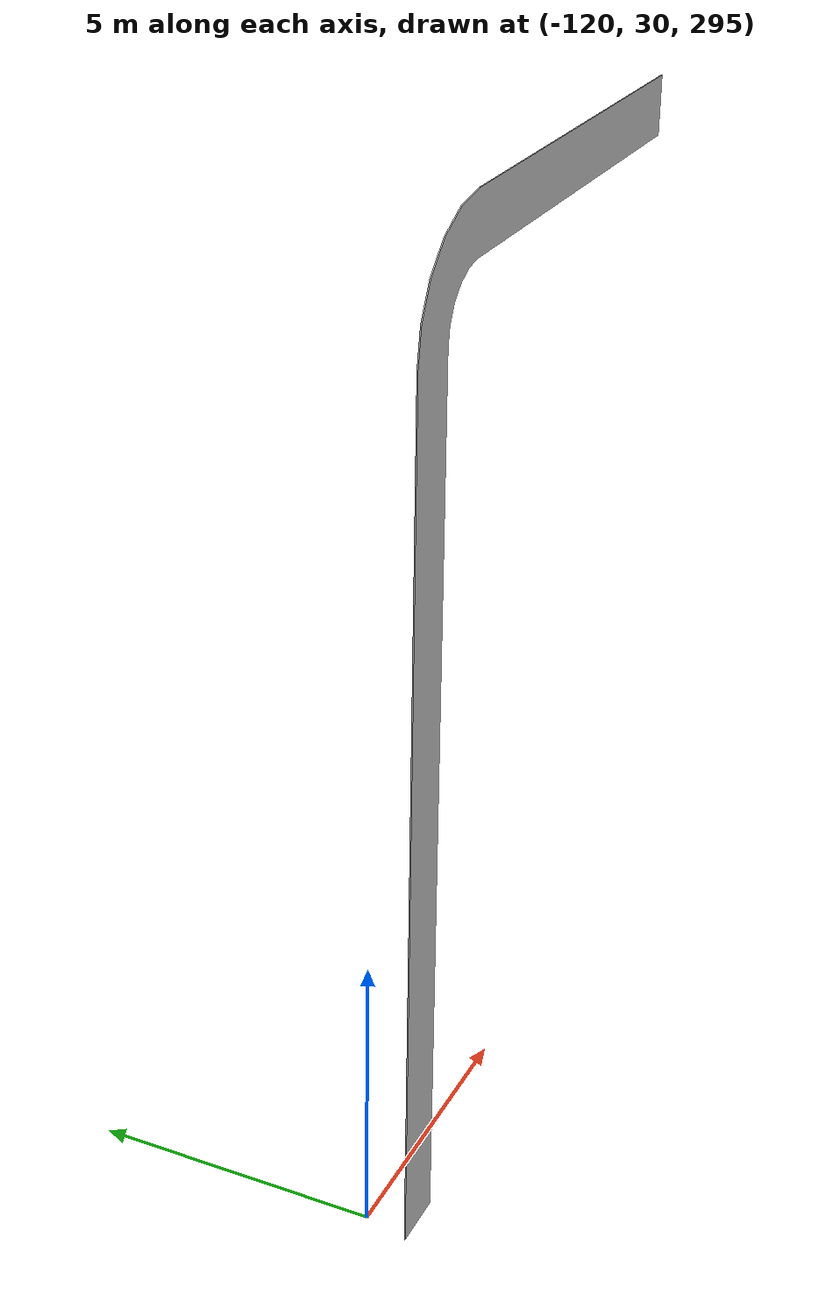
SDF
<?xml version='1.0'?>
<sdf version='1.7'>
    <model name='huldra-smaller-walkway'>
        <static>true</static>
        <link name='link0'>
            <visual name="visual0">
                <pose>0 0 0 0 0 0</pose>
                <geometry>
                    <mesh>
                        <uri>model://huldra-models/huldra-smaller-walkway/meshes/huldra-smaller-walkway.obj</uri>
                    </mesh>
                </geometry>
            </visual>
        </link>
    </model>
</sdf>
